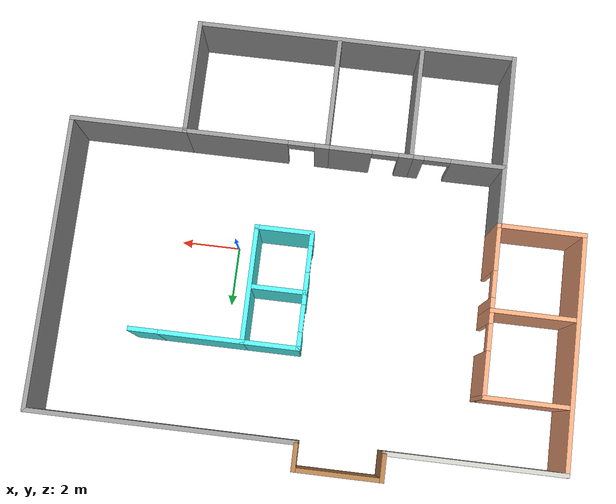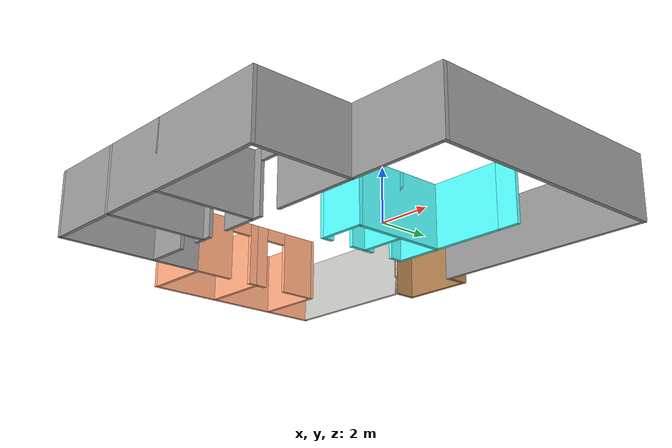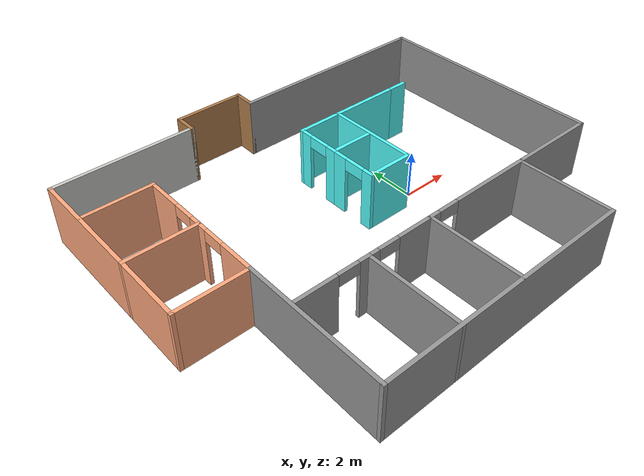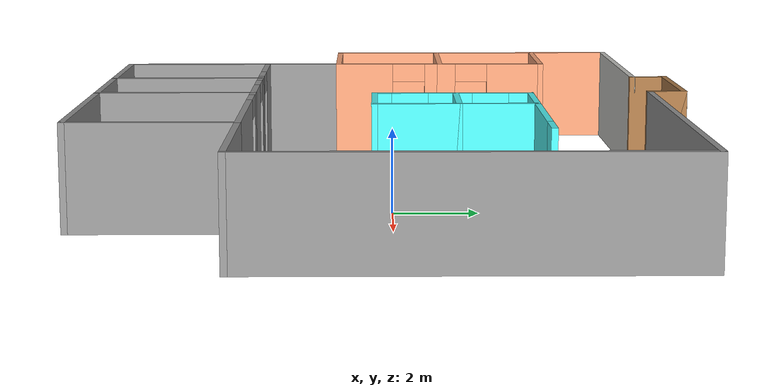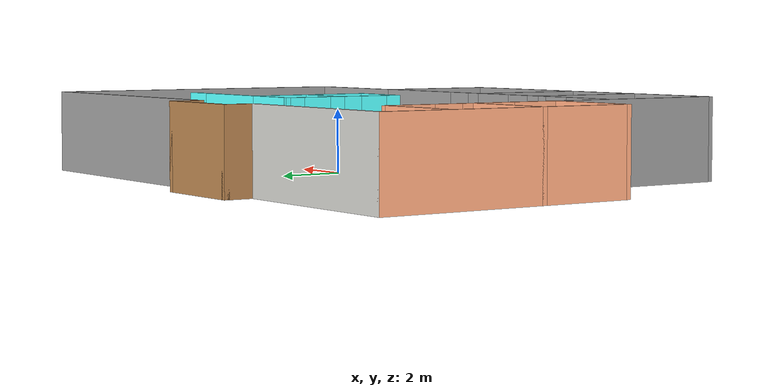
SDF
<?xml version='1.0'?>
<sdf version='1.6'>
  <model name='building'>
    <pose frame=''>-2.78199 0.012463 0 0 -0 0</pose>
    <link name='Wall_10'>
      <collision name='Wall_10_Collision'>
        <geometry>
          <box>
            <size>11 0.15 2.5</size>
          </box>
        </geometry>
        <pose frame=''>0 0 1.25 0 -0 0</pose>
      </collision>
      <visual name='Wall_10_Visual'>
        <pose frame=''>0 0 1.25 0 -0 0</pose>
        <geometry>
          <box>
            <size>11 0.15 2.5</size>
          </box>
        </geometry>
        <material>
          <script>
            <uri>file://media/materials/scripts/gazebo.material</uri>
            <name>Gazebo/Grey</name>
          </script>
          <ambient>1 1 1 1</ambient>
        </material>
        <meta>
          <layer>0</layer>
        </meta>
      </visual>
      <pose frame=''>-0.5 -7.275 0 0 -0 3.14159</pose>
    </link>
    <link name='Wall_11'>
      <collision name='Wall_11_Collision'>
        <geometry>
          <box>
            <size>6 0.15 2.5</size>
          </box>
        </geometry>
        <pose frame=''>0 0 1.25 0 -0 0</pose>
      </collision>
      <visual name='Wall_11_Visual'>
        <pose frame=''>0 0 1.25 0 -0 0</pose>
        <geometry>
          <box>
            <size>6 0.15 2.5</size>
          </box>
        </geometry>
        <material>
          <script>
            <uri>file://media/materials/scripts/gazebo.material</uri>
            <name>Gazebo/Grey</name>
          </script>
          <ambient>1 1 1 1</ambient>
        </material>
        <meta>
          <layer>0</layer>
        </meta>
      </visual>
      <pose frame=''>-5.925 -4.35 0 0 -0 1.5708</pose>
    </link>
    <link name='Wall_12'>
      <collision name='Wall_12_Collision'>
        <geometry>
          <box>
            <size>3 0.15 2.5</size>
          </box>
        </geometry>
        <pose frame=''>0 0 1.25 0 -0 0</pose>
      </collision>
      <visual name='Wall_12_Visual'>
        <pose frame=''>0 0 1.25 0 -0 0</pose>
        <geometry>
          <box>
            <size>3 0.15 2.5</size>
          </box>
        </geometry>
        <material>
          <script>
            <uri>file://media/materials/scripts/gazebo.material</uri>
            <name>Gazebo/Grey</name>
          </script>
          <ambient>1 0.666667 0.498039 1</ambient>
        </material>
        <meta>
          <layer>0</layer>
        </meta>
      </visual>
      <pose frame=''>-7.35 -1.425 0 0 -0 3.14159</pose>
    </link>
    <link name='Wall_13'>
      <collision name='Wall_13_Collision'>
        <geometry>
          <box>
            <size>8 0.15 2.5</size>
          </box>
        </geometry>
        <pose frame=''>0 0 1.25 0 -0 0</pose>
      </collision>
      <visual name='Wall_13_Visual'>
        <pose frame=''>0 0 1.25 0 -0 0</pose>
        <geometry>
          <box>
            <size>8 0.15 2.5</size>
          </box>
        </geometry>
        <material>
          <script>
            <uri>file://media/materials/scripts/gazebo.material</uri>
            <name>Gazebo/Grey</name>
          </script>
          <ambient>1 0.666667 0.498039 1</ambient>
        </material>
        <meta>
          <layer>0</layer>
        </meta>
      </visual>
      <pose frame=''>-8.775 2.5 0 0 -0 1.5708</pose>
    </link>
    <link name='Wall_15'>
      <pose frame=''>-5.925 0 0 0 -0 1.5708</pose>
      <visual name='Wall_15_Visual_0'>
        <pose frame=''>-0.699732 0 1.25 0 -0 0</pose>
        <geometry>
          <box>
            <size>1.60054 0.15 2.5</size>
          </box>
        </geometry>
        <material>
          <script>
            <uri>file://media/materials/scripts/gazebo.material</uri>
            <name>Gazebo/Grey</name>
          </script>
          <ambient>1 0.666667 0.498039 1</ambient>
        </material>
        <meta>
          <layer>0</layer>
        </meta>
      </visual>
      <collision name='Wall_15_Collision_0'>
        <geometry>
          <box>
            <size>1.60054 0.15 2.5</size>
          </box>
        </geometry>
        <pose frame=''>-0.699732 0 1.25 0 -0 0</pose>
      </collision>
      <visual name='Wall_15_Visual_1'>
        <pose frame=''>1.25027 0 1.25 0 -0 0</pose>
        <geometry>
          <box>
            <size>0.499463 0.15 2.5</size>
          </box>
        </geometry>
        <material>
          <script>
            <uri>file://media/materials/scripts/gazebo.material</uri>
            <name>Gazebo/Grey</name>
          </script>
          <ambient>1 0.666667 0.498039 1</ambient>
        </material>
        <meta>
          <layer>0</layer>
        </meta>
      </visual>
      <collision name='Wall_15_Collision_1'>
        <geometry>
          <box>
            <size>0.499463 0.15 2.5</size>
          </box>
        </geometry>
        <pose frame=''>1.25027 0 1.25 0 -0 0</pose>
      </collision>
      <visual name='Wall_15_Visual_2'>
        <pose frame=''>0.550537 0 2.25 0 -0 0</pose>
        <geometry>
          <box>
            <size>0.9 0.15 0.5</size>
          </box>
        </geometry>
        <material>
          <script>
            <uri>file://media/materials/scripts/gazebo.material</uri>
            <name>Gazebo/Grey</name>
          </script>
          <ambient>1 0.666667 0.498039 1</ambient>
        </material>
        <meta>
          <layer>0</layer>
        </meta>
      </visual>
      <collision name='Wall_15_Collision_2'>
        <geometry>
          <box>
            <size>0.9 0.15 0.5</size>
          </box>
        </geometry>
        <pose frame=''>0.550537 0 2.25 0 -0 0</pose>
      </collision>
    </link>
    <link name='Wall_16'>
      <collision name='Wall_16_Collision'>
        <geometry>
          <box>
            <size>3 0.15 2.5</size>
          </box>
        </geometry>
        <pose frame=''>0 0 1.25 0 -0 0</pose>
      </collision>
      <visual name='Wall_16_Visual'>
        <pose frame=''>0 0 1.25 0 -0 0</pose>
        <geometry>
          <box>
            <size>3 0.15 2.5</size>
          </box>
        </geometry>
        <material>
          <script>
            <uri>file://media/materials/scripts/gazebo.material</uri>
            <name>Gazebo/Grey</name>
          </script>
          <ambient>1 0.666667 0.498039 1</ambient>
        </material>
        <meta>
          <layer>0</layer>
        </meta>
      </visual>
      <pose frame=''>-7.35 1.425 0 0 -0 3.14159</pose>
    </link>
    <link name='Wall_18'>
      <pose frame=''>-5.925 2.85 0 0 -0 1.5708</pose>
      <visual name='Wall_18_Visual_0'>
        <pose frame=''>-1.24482 0 1.25 0 -0 0</pose>
        <geometry>
          <box>
            <size>0.510355 0.15 2.5</size>
          </box>
        </geometry>
        <material>
          <script>
            <uri>file://media/materials/scripts/gazebo.material</uri>
            <name>Gazebo/Grey</name>
          </script>
          <ambient>1 0.666667 0.498039 1</ambient>
        </material>
        <meta>
          <layer>0</layer>
        </meta>
      </visual>
      <collision name='Wall_18_Collision_0'>
        <geometry>
          <box>
            <size>0.510355 0.15 2.5</size>
          </box>
        </geometry>
        <pose frame=''>-1.24482 0 1.25 0 -0 0</pose>
      </collision>
      <visual name='Wall_18_Visual_1'>
        <pose frame=''>0.705177 0 1.25 0 -0 0</pose>
        <geometry>
          <box>
            <size>1.58964 0.15 2.5</size>
          </box>
        </geometry>
        <material>
          <script>
            <uri>file://media/materials/scripts/gazebo.material</uri>
            <name>Gazebo/Grey</name>
          </script>
          <ambient>1 0.666667 0.498039 1</ambient>
        </material>
        <meta>
          <layer>0</layer>
        </meta>
      </visual>
      <collision name='Wall_18_Collision_1'>
        <geometry>
          <box>
            <size>1.58964 0.15 2.5</size>
          </box>
        </geometry>
        <pose frame=''>0.705177 0 1.25 0 -0 0</pose>
      </collision>
      <visual name='Wall_18_Visual_2'>
        <pose frame=''>-0.539645 0 2.25 0 -0 0</pose>
        <geometry>
          <box>
            <size>0.9 0.15 0.5</size>
          </box>
        </geometry>
        <material>
          <script>
            <uri>file://media/materials/scripts/gazebo.material</uri>
            <name>Gazebo/Grey</name>
          </script>
          <ambient>1 0.666667 0.498039 1</ambient>
        </material>
        <meta>
          <layer>0</layer>
        </meta>
      </visual>
      <collision name='Wall_18_Collision_2'>
        <geometry>
          <box>
            <size>0.9 0.15 0.5</size>
          </box>
        </geometry>
        <pose frame=''>-0.539645 0 2.25 0 -0 0</pose>
      </collision>
    </link>
    <link name='Wall_19'>
      <collision name='Wall_19_Collision'>
        <geometry>
          <box>
            <size>3 0.15 2.5</size>
          </box>
        </geometry>
        <pose frame=''>0 0 1.25 0 -0 0</pose>
      </collision>
      <visual name='Wall_19_Visual'>
        <pose frame=''>0 0 1.25 0 -0 0</pose>
        <geometry>
          <box>
            <size>3 0.15 2.5</size>
          </box>
        </geometry>
        <material>
          <script>
            <uri>file://media/materials/scripts/gazebo.material</uri>
            <name>Gazebo/Grey</name>
          </script>
          <ambient>1 0.666667 0.498039 1</ambient>
        </material>
        <meta>
          <layer>0</layer>
        </meta>
      </visual>
      <pose frame=''>-7.35 4.275 0 0 -0 3.14159</pose>
    </link>
    <link name='Wall_2'>
      <collision name='Wall_2_Collision'>
        <geometry>
          <box>
            <size>6 0.15 2.5</size>
          </box>
        </geometry>
        <pose frame=''>0 0 1.25 0 -0 0</pose>
      </collision>
      <visual name='Wall_2_Visual'>
        <pose frame=''>0 0 1.25 0 -0 0</pose>
        <geometry>
          <box>
            <size>6 0.15 2.5</size>
          </box>
        </geometry>
        <material>
          <script>
            <uri>file://media/materials/scripts/gazebo.material</uri>
            <name>Gazebo/CeilingTiled</name>
          </script>
          <ambient>1 1 1 1</ambient>
        </material>
        <meta>
          <layer>0</layer>
        </meta>
      </visual>
      <pose frame=''>-5.85 6.425 0 0 -0 0</pose>
    </link>
    <link name='Wall_21'>
      <pose frame=''>2.5 -3.425 0 0 -0 3.14159</pose>
      <visual name='Wall_21_Visual_0'>
        <pose frame=''>-0.701525 0 1.25 0 -0 0</pose>
        <geometry>
          <box>
            <size>3.59695 0.15 2.5</size>
          </box>
        </geometry>
        <material>
          <script>
            <uri>file://media/materials/scripts/gazebo.material</uri>
            <name>Gazebo/Grey</name>
          </script>
          <ambient>1 1 1 1</ambient>
        </material>
        <meta>
          <layer>0</layer>
        </meta>
      </visual>
      <collision name='Wall_21_Collision_0'>
        <geometry>
          <box>
            <size>3.59695 0.15 2.5</size>
          </box>
        </geometry>
        <pose frame=''>-0.701525 0 1.25 0 -0 0</pose>
      </collision>
      <visual name='Wall_21_Visual_1'>
        <pose frame=''>2.24848 0 1.25 0 -0 0</pose>
        <geometry>
          <box>
            <size>0.50305 0.15 2.5</size>
          </box>
        </geometry>
        <material>
          <script>
            <uri>file://media/materials/scripts/gazebo.material</uri>
            <name>Gazebo/Grey</name>
          </script>
          <ambient>1 1 1 1</ambient>
        </material>
        <meta>
          <layer>0</layer>
        </meta>
      </visual>
      <collision name='Wall_21_Collision_1'>
        <geometry>
          <box>
            <size>0.50305 0.15 2.5</size>
          </box>
        </geometry>
        <pose frame=''>2.24848 0 1.25 0 -0 0</pose>
      </collision>
      <visual name='Wall_21_Visual_2'>
        <pose frame=''>1.54695 0 2.25 0 -0 0</pose>
        <geometry>
          <box>
            <size>0.9 0.15 0.5</size>
          </box>
        </geometry>
        <material>
          <script>
            <uri>file://media/materials/scripts/gazebo.material</uri>
            <name>Gazebo/Grey</name>
          </script>
          <ambient>1 1 1 1</ambient>
        </material>
        <meta>
          <layer>0</layer>
        </meta>
      </visual>
      <collision name='Wall_21_Collision_2'>
        <geometry>
          <box>
            <size>0.9 0.15 0.5</size>
          </box>
        </geometry>
        <pose frame=''>1.54695 0 2.25 0 -0 0</pose>
      </collision>
    </link>
    <link name='Wall_22'>
      <collision name='Wall_22_Collision'>
        <geometry>
          <box>
            <size>4 0.15 2.5</size>
          </box>
        </geometry>
        <pose frame=''>0 0 1.25 0 -0 0</pose>
      </collision>
      <visual name='Wall_22_Visual'>
        <pose frame=''>0 0 1.25 0 -0 0</pose>
        <geometry>
          <box>
            <size>4 0.15 2.5</size>
          </box>
        </geometry>
        <material>
          <script>
            <uri>file://media/materials/scripts/gazebo.material</uri>
            <name>Gazebo/Grey</name>
          </script>
          <ambient>1 1 1 1</ambient>
        </material>
        <meta>
          <layer>0</layer>
        </meta>
      </visual>
      <pose frame=''>0.075 -5.35 0 0 0 -1.5708</pose>
    </link>
    <link name='Wall_24'>
      <pose frame=''>-1.35 -3.425 0 0 -0 3.14159</pose>
      <visual name='Wall_24_Visual_0'>
        <pose frame=''>-0.700436 0 1.25 0 -0 0</pose>
        <geometry>
          <box>
            <size>1.59913 0.15 2.5</size>
          </box>
        </geometry>
        <material>
          <script>
            <uri>file://media/materials/scripts/gazebo.material</uri>
            <name>Gazebo/Grey</name>
          </script>
          <ambient>1 1 1 1</ambient>
        </material>
        <meta>
          <layer>0</layer>
        </meta>
      </visual>
      <collision name='Wall_24_Collision_0'>
        <geometry>
          <box>
            <size>1.59913 0.15 2.5</size>
          </box>
        </geometry>
        <pose frame=''>-0.700436 0 1.25 0 -0 0</pose>
      </collision>
      <visual name='Wall_24_Visual_1'>
        <pose frame=''>1.24956 0 1.25 0 -0 0</pose>
        <geometry>
          <box>
            <size>0.500873 0.15 2.5</size>
          </box>
        </geometry>
        <material>
          <script>
            <uri>file://media/materials/scripts/gazebo.material</uri>
            <name>Gazebo/Grey</name>
          </script>
          <ambient>1 1 1 1</ambient>
        </material>
        <meta>
          <layer>0</layer>
        </meta>
      </visual>
      <collision name='Wall_24_Collision_1'>
        <geometry>
          <box>
            <size>0.500873 0.15 2.5</size>
          </box>
        </geometry>
        <pose frame=''>1.24956 0 1.25 0 -0 0</pose>
      </collision>
      <visual name='Wall_24_Visual_2'>
        <pose frame=''>0.549127 0 2.25 0 -0 0</pose>
        <geometry>
          <box>
            <size>0.9 0.15 0.5</size>
          </box>
        </geometry>
        <material>
          <script>
            <uri>file://media/materials/scripts/gazebo.material</uri>
            <name>Gazebo/Grey</name>
          </script>
          <ambient>1 1 1 1</ambient>
        </material>
        <meta>
          <layer>0</layer>
        </meta>
      </visual>
      <collision name='Wall_24_Collision_2'>
        <geometry>
          <box>
            <size>0.9 0.15 0.5</size>
          </box>
        </geometry>
        <pose frame=''>0.549127 0 2.25 0 -0 0</pose>
      </collision>
    </link>
    <link name='Wall_25'>
      <collision name='Wall_25_Collision'>
        <geometry>
          <box>
            <size>4 0.15 2.5</size>
          </box>
        </geometry>
        <pose frame=''>0 0 1.25 0 -0 0</pose>
      </collision>
      <visual name='Wall_25_Visual'>
        <pose frame=''>0 0 1.25 0 -0 0</pose>
        <geometry>
          <box>
            <size>4 0.15 2.5</size>
          </box>
        </geometry>
        <material>
          <script>
            <uri>file://media/materials/scripts/gazebo.material</uri>
            <name>Gazebo/Grey</name>
          </script>
          <ambient>1 1 1 1</ambient>
        </material>
        <meta>
          <layer>0</layer>
        </meta>
      </visual>
      <pose frame=''>-2.775 -5.35 0 0 0 -1.5708</pose>
    </link>
    <link name='Wall_27'>
      <pose frame=''>-4.325 -3.425 0 0 -0 3.14159</pose>
      <visual name='Wall_27_Visual_0'>
        <pose frame=''>-1.37053 0 1.25 0 -0 0</pose>
        <geometry>
          <box>
            <size>0.508945 0.15 2.5</size>
          </box>
        </geometry>
        <material>
          <script>
            <uri>file://media/materials/scripts/gazebo.material</uri>
            <name>Gazebo/Grey</name>
          </script>
          <ambient>1 1 1 1</ambient>
        </material>
        <meta>
          <layer>0</layer>
        </meta>
      </visual>
      <collision name='Wall_27_Collision_0'>
        <geometry>
          <box>
            <size>0.508945 0.15 2.5</size>
          </box>
        </geometry>
        <pose frame=''>-1.37053 0 1.25 0 -0 0</pose>
      </collision>
      <visual name='Wall_27_Visual_1'>
        <pose frame=''>0.704472 0 1.25 0 -0 0</pose>
        <geometry>
          <box>
            <size>1.84106 0.15 2.5</size>
          </box>
        </geometry>
        <material>
          <script>
            <uri>file://media/materials/scripts/gazebo.material</uri>
            <name>Gazebo/Grey</name>
          </script>
          <ambient>1 1 1 1</ambient>
        </material>
        <meta>
          <layer>0</layer>
        </meta>
      </visual>
      <collision name='Wall_27_Collision_1'>
        <geometry>
          <box>
            <size>1.84106 0.15 2.5</size>
          </box>
        </geometry>
        <pose frame=''>0.704472 0 1.25 0 -0 0</pose>
      </collision>
      <visual name='Wall_27_Visual_2'>
        <pose frame=''>-0.666055 0 2.25 0 -0 0</pose>
        <geometry>
          <box>
            <size>0.9 0.15 0.5</size>
          </box>
        </geometry>
        <material>
          <script>
            <uri>file://media/materials/scripts/gazebo.material</uri>
            <name>Gazebo/Grey</name>
          </script>
          <ambient>1 1 1 1</ambient>
        </material>
        <meta>
          <layer>0</layer>
        </meta>
      </visual>
      <collision name='Wall_27_Collision_2'>
        <geometry>
          <box>
            <size>0.9 0.15 0.5</size>
          </box>
        </geometry>
        <pose frame=''>-0.666055 0 2.25 0 -0 0</pose>
      </collision>
    </link>
    <link name='Wall_3'>
      <collision name='Wall_3_Collision'>
        <geometry>
          <box>
            <size>1 0.15 2.5</size>
          </box>
        </geometry>
        <pose frame=''>0 0 1.25 0 -0 0</pose>
      </collision>
      <visual name='Wall_3_Visual'>
        <pose frame=''>0 0 1.25 0 -0 0</pose>
        <geometry>
          <box>
            <size>1 0.15 2.5</size>
          </box>
        </geometry>
        <material>
          <script>
            <uri>file://media/materials/scripts/gazebo.material</uri>
            <name>Gazebo/Wood</name>
          </script>
          <ambient>1 1 1 1</ambient>
        </material>
        <meta>
          <layer>0</layer>
        </meta>
      </visual>
      <pose frame=''>-2.925 6.85 0 0 -0 1.5708</pose>
    </link>
    <link name='Wall_30'>
      <collision name='Wall_30_Collision'>
        <geometry>
          <box>
            <size>1 0.15 2.5</size>
          </box>
        </geometry>
        <pose frame=''>0 0 1.25 0 -0 0</pose>
      </collision>
      <visual name='Wall_30_Visual'>
        <pose frame=''>0 0 1.25 0 -0 0</pose>
        <geometry>
          <box>
            <size>1 0.15 2.5</size>
          </box>
        </geometry>
        <material>
          <script>
            <uri>file://media/materials/scripts/gazebo.material</uri>
            <name>Gazebo/Grey</name>
          </script>
          <ambient>0.333333 1 1 1</ambient>
        </material>
        <meta>
          <layer>0</layer>
        </meta>
      </visual>
      <pose frame=''>5.35 3.425 0 0 -0 0</pose>
    </link>
    <link name='Wall_32'>
      <collision name='Wall_32_Collision'>
        <geometry>
          <box>
            <size>3 0.15 2.5</size>
          </box>
        </geometry>
        <pose frame=''>0 0 1.25 0 -0 0</pose>
      </collision>
      <visual name='Wall_32_Visual'>
        <pose frame=''>0 0 1.25 0 -0 0</pose>
        <geometry>
          <box>
            <size>3 0.15 2.5</size>
          </box>
        </geometry>
        <material>
          <script>
            <uri>file://media/materials/scripts/gazebo.material</uri>
            <name>Gazebo/Grey</name>
          </script>
          <ambient>0.333333 1 1 1</ambient>
        </material>
        <meta>
          <layer>0</layer>
        </meta>
      </visual>
      <pose frame=''>3.5 3.425 0 0 -0 3.14159</pose>
    </link>
    <link name='Wall_34'>
      <collision name='Wall_34_Collision'>
        <geometry>
          <box>
            <size>4 0.15 2.5</size>
          </box>
        </geometry>
        <pose frame=''>0 0 1.25 0 -0 0</pose>
      </collision>
      <visual name='Wall_34_Visual'>
        <pose frame=''>0 0 1.25 0 -0 0</pose>
        <geometry>
          <box>
            <size>4 0.15 2.5</size>
          </box>
        </geometry>
        <material>
          <script>
            <uri>file://media/materials/scripts/gazebo.material</uri>
            <name>Gazebo/Grey</name>
          </script>
          <ambient>0.333333 1 1 1</ambient>
        </material>
        <meta>
          <layer>0</layer>
        </meta>
      </visual>
      <pose frame=''>2.075 1.5 0 0 0 -1.5708</pose>
    </link>
    <link name='Wall_35'>
      <collision name='Wall_35_Collision'>
        <geometry>
          <box>
            <size>2 0.15 2.5</size>
          </box>
        </geometry>
        <pose frame=''>0 0 1.25 0 -0 0</pose>
      </collision>
      <visual name='Wall_35_Visual'>
        <pose frame=''>0 0 1.25 0 -0 0</pose>
        <geometry>
          <box>
            <size>2 0.15 2.5</size>
          </box>
        </geometry>
        <material>
          <script>
            <uri>file://media/materials/scripts/gazebo.material</uri>
            <name>Gazebo/Grey</name>
          </script>
          <ambient>0.333333 1 1 1</ambient>
        </material>
        <meta>
          <layer>0</layer>
        </meta>
      </visual>
      <pose frame=''>1.15 -0.425 0 0 -0 3.14159</pose>
    </link>
    <link name='Wall_37'>
      <collision name='Wall_37_Collision'>
        <geometry>
          <box>
            <size>2 0.15 2.5</size>
          </box>
        </geometry>
        <pose frame=''>0 0 1.25 0 -0 0</pose>
      </collision>
      <visual name='Wall_37_Visual'>
        <pose frame=''>0 0 1.25 0 -0 0</pose>
        <geometry>
          <box>
            <size>2 0.15 2.5</size>
          </box>
        </geometry>
        <material>
          <script>
            <uri>file://media/materials/scripts/gazebo.material</uri>
            <name>Gazebo/Grey</name>
          </script>
          <ambient>0.333333 1 1 1</ambient>
        </material>
        <meta>
          <layer>0</layer>
        </meta>
      </visual>
      <pose frame=''>1.15 3.425 0 0 -0 0</pose>
    </link>
    <link name='Wall_39'>
      <pose frame=''>0.225 2.5 0 0 0 -1.5708</pose>
      <visual name='Wall_39_Visual_0'>
        <pose frame=''>-0.69061 0 1.25 0 -0 0</pose>
        <geometry>
          <box>
            <size>0.61878 0.15 2.5</size>
          </box>
        </geometry>
        <material>
          <script>
            <uri>file://media/materials/scripts/gazebo.material</uri>
            <name>Gazebo/Grey</name>
          </script>
          <ambient>0.333333 1 1 1</ambient>
        </material>
        <meta>
          <layer>0</layer>
        </meta>
      </visual>
      <collision name='Wall_39_Collision_0'>
        <geometry>
          <box>
            <size>0.61878 0.15 2.5</size>
          </box>
        </geometry>
        <pose frame=''>-0.69061 0 1.25 0 -0 0</pose>
      </collision>
      <visual name='Wall_39_Visual_1'>
        <pose frame=''>0.75939 0 1.25 0 -0 0</pose>
        <geometry>
          <box>
            <size>0.48122 0.15 2.5</size>
          </box>
        </geometry>
        <material>
          <script>
            <uri>file://media/materials/scripts/gazebo.material</uri>
            <name>Gazebo/Grey</name>
          </script>
          <ambient>0.333333 1 1 1</ambient>
        </material>
        <meta>
          <layer>0</layer>
        </meta>
      </visual>
      <collision name='Wall_39_Collision_1'>
        <geometry>
          <box>
            <size>0.48122 0.15 2.5</size>
          </box>
        </geometry>
        <pose frame=''>0.75939 0 1.25 0 -0 0</pose>
      </collision>
      <visual name='Wall_39_Visual_2'>
        <pose frame=''>0.06878 0 2.25 0 -0 0</pose>
        <geometry>
          <box>
            <size>0.9 0.15 0.5</size>
          </box>
        </geometry>
        <material>
          <script>
            <uri>file://media/materials/scripts/gazebo.material</uri>
            <name>Gazebo/Grey</name>
          </script>
          <ambient>0.333333 1 1 1</ambient>
        </material>
        <meta>
          <layer>0</layer>
        </meta>
      </visual>
      <collision name='Wall_39_Collision_2'>
        <geometry>
          <box>
            <size>0.9 0.15 0.5</size>
          </box>
        </geometry>
        <pose frame=''>0.06878 0 2.25 0 -0 0</pose>
      </collision>
    </link>
    <link name='Wall_4'>
      <collision name='Wall_4_Collision'>
        <geometry>
          <box>
            <size>3 0.15 2.5</size>
          </box>
        </geometry>
        <pose frame=''>0 0 1.25 0 -0 0</pose>
      </collision>
      <visual name='Wall_4_Visual'>
        <pose frame=''>0 0 1.25 0 -0 0</pose>
        <geometry>
          <box>
            <size>3 0.15 2.5</size>
          </box>
        </geometry>
        <material>
          <script>
            <uri>file://media/materials/scripts/gazebo.material</uri>
            <name>Gazebo/Wood</name>
          </script>
          <ambient>1 1 1 1</ambient>
        </material>
        <meta>
          <layer>0</layer>
        </meta>
      </visual>
      <pose frame=''>-1.5 7.275 0 0 -0 0</pose>
    </link>
    <link name='Wall_40'>
      <collision name='Wall_40_Collision'>
        <geometry>
          <box>
            <size>2 0.15 2.5</size>
          </box>
        </geometry>
        <pose frame=''>0 0 1.25 0 -0 0</pose>
      </collision>
      <visual name='Wall_40_Visual'>
        <pose frame=''>0 0 1.25 0 -0 0</pose>
        <geometry>
          <box>
            <size>2 0.15 2.5</size>
          </box>
        </geometry>
        <material>
          <script>
            <uri>file://media/materials/scripts/gazebo.material</uri>
            <name>Gazebo/Grey</name>
          </script>
          <ambient>0.333333 1 1 1</ambient>
        </material>
        <meta>
          <layer>0</layer>
        </meta>
      </visual>
      <pose frame=''>1.15 1.575 0 0 -0 0</pose>
    </link>
    <link name='Wall_42'>
      <pose frame=''>0.225 0.575 0 0 0 -1.5708</pose>
      <visual name='Wall_42_Visual_0'>
        <pose frame=''>-0.699448 0 1.25 0 -0 0</pose>
        <geometry>
          <box>
            <size>0.751103 0.15 2.5</size>
          </box>
        </geometry>
        <material>
          <script>
            <uri>file://media/materials/scripts/gazebo.material</uri>
            <name>Gazebo/Grey</name>
          </script>
          <ambient>0.333333 1 1 1</ambient>
        </material>
        <meta>
          <layer>0</layer>
        </meta>
      </visual>
      <collision name='Wall_42_Collision_0'>
        <geometry>
          <box>
            <size>0.751103 0.15 2.5</size>
          </box>
        </geometry>
        <pose frame=''>-0.699448 0 1.25 0 -0 0</pose>
      </collision>
      <visual name='Wall_42_Visual_1'>
        <pose frame=''>0.825552 0 1.25 0 -0 0</pose>
        <geometry>
          <box>
            <size>0.498897 0.15 2.5</size>
          </box>
        </geometry>
        <material>
          <script>
            <uri>file://media/materials/scripts/gazebo.material</uri>
            <name>Gazebo/Grey</name>
          </script>
          <ambient>0.333333 1 1 1</ambient>
        </material>
        <meta>
          <layer>0</layer>
        </meta>
      </visual>
      <collision name='Wall_42_Collision_1'>
        <geometry>
          <box>
            <size>0.498897 0.15 2.5</size>
          </box>
        </geometry>
        <pose frame=''>0.825552 0 1.25 0 -0 0</pose>
      </collision>
      <visual name='Wall_42_Visual_2'>
        <pose frame=''>0.126103 0 2.25 0 -0 0</pose>
        <geometry>
          <box>
            <size>0.9 0.15 0.5</size>
          </box>
        </geometry>
        <material>
          <script>
            <uri>file://media/materials/scripts/gazebo.material</uri>
            <name>Gazebo/Grey</name>
          </script>
          <ambient>0.333333 1 1 1</ambient>
        </material>
        <meta>
          <layer>0</layer>
        </meta>
      </visual>
      <collision name='Wall_42_Collision_2'>
        <geometry>
          <box>
            <size>0.9 0.15 0.5</size>
          </box>
        </geometry>
        <pose frame=''>0.126103 0 2.25 0 -0 0</pose>
      </collision>
    </link>
    <link name='Wall_5'>
      <collision name='Wall_5_Collision'>
        <geometry>
          <box>
            <size>1 0.15 2.5</size>
          </box>
        </geometry>
        <pose frame=''>0 0 1.25 0 -0 0</pose>
      </collision>
      <visual name='Wall_5_Visual'>
        <pose frame=''>0 0 1.25 0 -0 0</pose>
        <geometry>
          <box>
            <size>1 0.15 2.5</size>
          </box>
        </geometry>
        <material>
          <script>
            <uri>file://media/materials/scripts/gazebo.material</uri>
            <name>Gazebo/Wood</name>
          </script>
          <ambient>1 1 1 1</ambient>
        </material>
        <meta>
          <layer>0</layer>
        </meta>
      </visual>
      <pose frame=''>-0.075 6.85 0 0 0 -1.5708</pose>
    </link>
    <link name='Wall_6'>
      <collision name='Wall_6_Collision'>
        <geometry>
          <box>
            <size>9 0.15 2.5</size>
          </box>
        </geometry>
        <pose frame=''>0 0 1.25 0 -0 0</pose>
      </collision>
      <visual name='Wall_6_Visual'>
        <pose frame=''>0 0 1.25 0 -0 0</pose>
        <geometry>
          <box>
            <size>9 0.15 2.5</size>
          </box>
        </geometry>
        <material>
          <script>
            <uri>file://media/materials/scripts/gazebo.material</uri>
            <name>Gazebo/Grey</name>
          </script>
          <ambient>1 1 1 1</ambient>
        </material>
        <meta>
          <layer>0</layer>
        </meta>
      </visual>
      <pose frame=''>4.35 6.425 0 0 -0 0</pose>
    </link>
    <link name='Wall_7'>
      <collision name='Wall_7_Collision'>
        <geometry>
          <box>
            <size>10 0.15 2.5</size>
          </box>
        </geometry>
        <pose frame=''>0 0 1.25 0 -0 0</pose>
      </collision>
      <visual name='Wall_7_Visual'>
        <pose frame=''>0 0 1.25 0 -0 0</pose>
        <geometry>
          <box>
            <size>10 0.15 2.5</size>
          </box>
        </geometry>
        <material>
          <script>
            <uri>file://media/materials/scripts/gazebo.material</uri>
            <name>Gazebo/Grey</name>
          </script>
          <ambient>1 1 1 1</ambient>
        </material>
        <meta>
          <layer>0</layer>
        </meta>
      </visual>
      <pose frame=''>8.775 1.5 0 0 0 -1.5708</pose>
    </link>
    <link name='Wall_8'>
      <collision name='Wall_8_Collision'>
        <geometry>
          <box>
            <size>4 0.15 2.5</size>
          </box>
        </geometry>
        <pose frame=''>0 0 1.25 0 -0 0</pose>
      </collision>
      <visual name='Wall_8_Visual'>
        <pose frame=''>0 0 1.25 0 -0 0</pose>
        <geometry>
          <box>
            <size>4 0.15 2.5</size>
          </box>
        </geometry>
        <material>
          <script>
            <uri>file://media/materials/scripts/gazebo.material</uri>
            <name>Gazebo/Grey</name>
          </script>
          <ambient>1 1 1 1</ambient>
        </material>
        <meta>
          <layer>0</layer>
        </meta>
      </visual>
      <pose frame=''>6.85 -3.425 0 0 -0 3.14159</pose>
    </link>
    <link name='Wall_9'>
      <collision name='Wall_9_Collision'>
        <geometry>
          <box>
            <size>4 0.15 2.5</size>
          </box>
        </geometry>
        <pose frame=''>0 0 1.25 0 -0 0</pose>
      </collision>
      <visual name='Wall_9_Visual'>
        <pose frame=''>0 0 1.25 0 -0 0</pose>
        <geometry>
          <box>
            <size>4 0.15 2.5</size>
          </box>
        </geometry>
        <material>
          <script>
            <uri>file://media/materials/scripts/gazebo.material</uri>
            <name>Gazebo/Grey</name>
          </script>
          <ambient>1 1 1 1</ambient>
        </material>
        <meta>
          <layer>0</layer>
        </meta>
      </visual>
      <pose frame=''>4.925 -5.35 0 0 0 -1.5708</pose>
    </link>
    <static>1</static>
  </model>
</sdf>
